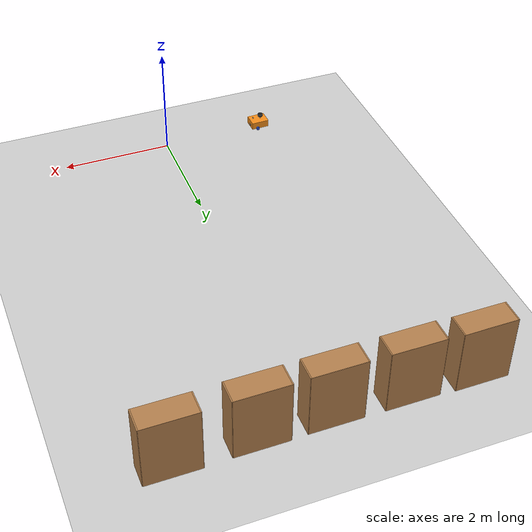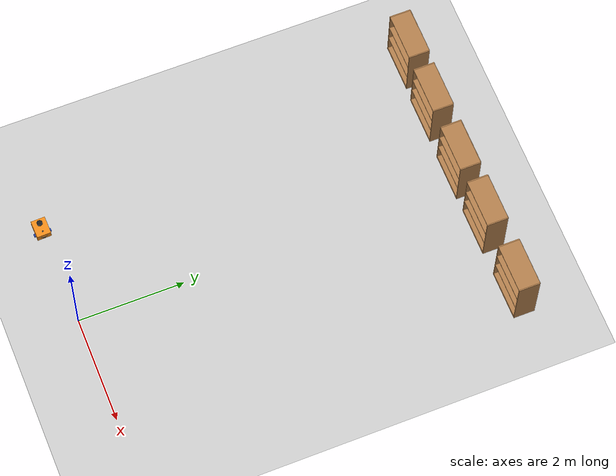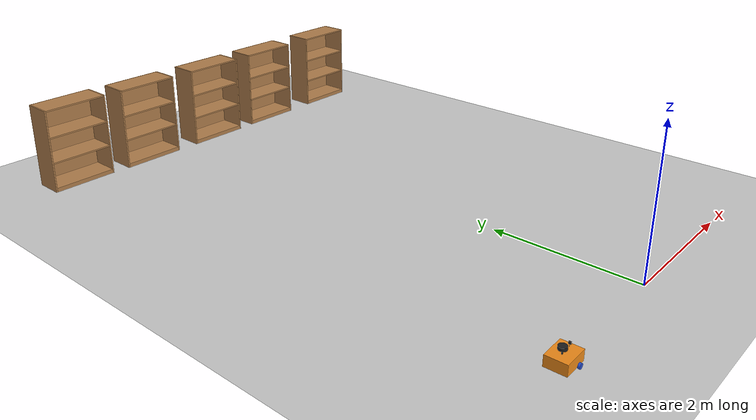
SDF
<sdf version="1.7">
 <world name="default">
  <light name="sun" type="directional">
   <pose>0 0 10 0 -0 0</pose>
   <diffuse>0.8 0.8 0.8 1</diffuse>
   <specular>0.2 0.2 0.2 1</specular>
   <attenuation>
    <range>1000</range>
    <constant>0.9</constant>
    <linear>0.01</linear>
    <quadratic>0.001</quadratic>
   </attenuation>
   <direction>-0.5 0.1 -0.9</direction>
   <spot><inner_angle>0</inner_angle><outer_angle>0</outer_angle><falloff>0</falloff></spot>
  </light>
  <model name="ground_plane">
   <static>1</static>
   <link name="link">
    <collision name="collision">
     <geometry><plane><normal>0 0 1</normal><size>100 100</size></plane></geometry>
     <surface>
      <contact><collide_bitmask>65535</collide_bitmask></contact>
      <friction><ode><mu>100</mu><mu2>50</mu2></ode></friction>
     </surface>
    </collision>
    <visual name="visual">
     <cast_shadows>0</cast_shadows>
     <geometry><plane><normal>0 0 1</normal><size>100 100</size></plane></geometry>
     <material>
      <script><uri>file://media/materials/scripts/gazebo.material</uri><name>Gazebo/Grey</name></script>
     </material>
    </visual>
   </link>
  </model>
  <gravity>0 0 -9.8</gravity>
  <magnetic_field>6e-06 2.3e-05 -4.2e-05</magnetic_field>
  <atmosphere type="adiabatic"/>
  <physics type="ode">
   <max_step_size>0.001</max_step_size>
   <real_time_factor>1</real_time_factor>
   <real_time_update_rate>1000</real_time_update_rate>
  </physics>
  <scene><ambient>0.4 0.4 0.4 1</ambient><background>0.7 0.7 0.7 1</background><shadows>1</shadows></scene>
  <audio><device>default</device></audio>
  <spherical_coordinates>
   <surface_model>EARTH_WGS84</surface_model>
   <latitude_deg>0</latitude_deg>
   <longitude_deg>0</longitude_deg>
   <elevation>0</elevation>
   <heading_deg>0</heading_deg>
  </spherical_coordinates>
  <model name="my_bot">
   <link name="base_link">
    <inertial>
     <pose>-0.067475 0 0.081098 0 -0 0</pose>
     <mass>0.61</mass>
     <inertia>
      <ixx>0.00561003</ixx>
      <ixy>0</ixy>
      <ixz>0.000453811</ixz>
      <iyy>0.00760348</iyy>
      <iyz>0</iyz>
      <izz>0.00797093</izz>
     </inertia>
    </inertial>
    <collision name="base_link_fixed_joint_lump__chassis_collision">
     <pose>-0.0585 0 0.059 0 -0 0</pose>
     <geometry><box><size>0.335 0.265 0.138</size></box></geometry>
    </collision>
    <collision name="base_link_fixed_joint_lump__caster_wheel_collision_1">
     <pose>-0.151 0 -0.023 0 -0 0</pose>
     <geometry><sphere><radius>0.01</radius></sphere></geometry>
     <surface><friction><ode><mu>0.001</mu><mu2>0.001</mu2></ode></friction></surface>
    </collision>
    <collision name="base_link_fixed_joint_lump__laser_frame_collision_2">
     <pose>-0.104 0 0.202 0 -0 0</pose>
     <geometry><cylinder><length>0.04</length><radius>0.05</radius></cylinder></geometry>
    </collision>
    <visual name="base_link_fixed_joint_lump__chassis_visual">
     <pose>-0.0585 0 0.059 0 -0 0</pose>
     <geometry><box><size>0.335 0.265 0.138</size></box></geometry>
     <material>
      <script><name>Gazebo/Orange</name><uri>file://media/materials/scripts/gazebo.material</uri></script>
     </material>
    </visual>
    <visual name="base_link_fixed_joint_lump__camera_link_visual_1">
     <pose>0.05 0 0.171 0 0.18 0</pose>
     <geometry><box><size>0.01 0.03 0.03</size></box></geometry>
     <material>
      <script><name>Gazebo/Black</name><uri>file://media/materials/scripts/gazebo.material</uri></script>
     </material>
    </visual>
    <visual name="base_link_fixed_joint_lump__camera_link_visual_2">
     <pose>0.041049 0 0.121808 0 0.18 0</pose>
     <geometry><cylinder><length>0.1</length><radius>0.002</radius></cylinder></geometry>
     <material>
      <script><name>Gazebo/Black</name><uri>file://media/materials/scripts/gazebo.material</uri></script>
     </material>
    </visual>
    <visual name="base_link_fixed_joint_lump__caster_wheel_visual_3">
     <pose>-0.151 0 -0.023 0 -0 0</pose>
     <geometry><sphere><radius>0.01</radius></sphere></geometry>
     <material>
      <script><name>Gazebo/White</name><uri>file://media/materials/scripts/gazebo.material</uri></script>
     </material>
    </visual>
    <visual name="base_link_fixed_joint_lump__face_link_visual_4">
     <pose>0.109 0.05 0.069 3.14159 1.57079 3.14159</pose>
     <geometry><cylinder><length>0.002</length><radius>0.01</radius></cylinder></geometry>
     <material>
      <script><name>Gazebo/Black</name><uri>file://media/materials/scripts/gazebo.material</uri></script>
     </material>
    </visual>
    <visual name="base_link_fixed_joint_lump__face_link_visual_5">
     <pose>0.109 -0.05 0.069 3.14159 1.57079 3.14159</pose>
     <geometry><cylinder><length>0.002</length><radius>0.01</radius></cylinder></geometry>
     <material>
      <script><name>Gazebo/Black</name><uri>file://media/materials/scripts/gazebo.material</uri></script>
     </material>
    </visual>
    <visual name="base_link_fixed_joint_lump__face_link_visual_6">
     <pose>0.098 0 0.059 0 1.5 0</pose>
     <geometry><cylinder><length>0.02</length><radius>0.05</radius></cylinder></geometry>
     <material>
      <script><name>Gazebo/Black</name><uri>file://media/materials/scripts/gazebo.material</uri></script>
     </material>
    </visual>
    <visual name="base_link_fixed_joint_lump__laser_frame_visual_7">
     <pose>-0.104 0 0.202 0 -0 0</pose>
     <geometry><cylinder><length>0.04</length><radius>0.05</radius></cylinder></geometry>
     <material>
      <script><name>Gazebo/Black</name><uri>file://media/materials/scripts/gazebo.material</uri></script>
     </material>
    </visual>
    <visual name="base_link_fixed_joint_lump__laser_frame_visual_8">
     <pose>-0.104 0 0.152 0 -0 0</pose>
     <geometry><cylinder><length>0.1</length><radius>0.01</radius></cylinder></geometry>
     <material>
      <script><name>Gazebo/Black</name><uri>file://media/materials/scripts/gazebo.material</uri></script>
     </material>
    </visual>
    <sensor name="camera" type="camera">
     <visualize>1</visualize>
     <update_rate>10</update_rate>
     <camera>
      <horizontal_fov>1.089</horizontal_fov>
      <image><format>R8G8B8</format><width>640</width><height>480</height></image>
      <clip><near>0.05</near><far>8</far></clip>
     </camera>
     <plugin name="camera_controller" filename="libgazebo_ros_camera.so">
      <frame_name>camera_link_optical</frame_name>
     </plugin>
     <pose>0.05 0 0.171 0 0.18 0</pose>
    </sensor>
    <sensor name="laser" type="ray">
     <visualize>0</visualize>
     <update_rate>10</update_rate>
     <ray>
      <scan>
       <horizontal>
        <samples>360</samples>
        <min_angle>-3.14</min_angle>
        <max_angle>3.14</max_angle>
        <resolution>1</resolution>
       </horizontal>
       <vertical><samples>1</samples><min_angle>0</min_angle><max_angle>0</max_angle></vertical>
      </scan>
      <range><min>0.3</min><max>12</max></range>
     </ray>
     <plugin name="laser_controller" filename="libgazebo_ros_ray_sensor.so">
      <ros><argument>~/out:=scan</argument></ros>
      <output_type>sensor_msgs/LaserScan</output_type>
      <frame_name>laser_frame</frame_name>
     </plugin>
     <pose>-0.104 0 0.202 0 -0 0</pose>
    </sensor>
   </link>
   <joint name="left_wheel_joint" type="revolute">
    <pose relative_to="base_link">0 0.1485 0 -1.5708 0 0</pose>
    <parent>base_link</parent>
    <child>left_wheel</child>
    <axis>
     <xyz>0 0 1</xyz>
     <limit><lower>-1e+16</lower><upper>1e+16</upper></limit>
     <dynamics><spring_reference>0</spring_reference><spring_stiffness>0</spring_stiffness></dynamics>
    </axis>
   </joint>
   <link name="left_wheel">
    <pose relative_to="left_wheel_joint">0 0 0 0 -0 0</pose>
    <inertial>
     <mass>0.05</mass>
     <inertia>
      <ixx>1.64292e-05</ixx>
      <ixy>0</ixy>
      <ixz>0</ixz>
      <iyy>1.64292e-05</iyy>
      <iyz>0</iyz>
      <izz>2.7225e-05</izz>
     </inertia>
    </inertial>
    <collision name="left_wheel_collision">
     <geometry><sphere><radius>0.033</radius></sphere></geometry>
    </collision>
    <visual name="left_wheel_visual">
     <geometry><cylinder><length>0.026</length><radius>0.033</radius></cylinder></geometry>
     <material>
      <script><name>Gazebo/Blue</name><uri>file://media/materials/scripts/gazebo.material</uri></script>
     </material>
    </visual>
   </link>
   <joint name="right_wheel_joint" type="revolute">
    <pose relative_to="base_link">0 -0.1485 0 1.5708 -0 0</pose>
    <parent>base_link</parent>
    <child>right_wheel</child>
    <axis>
     <xyz>0 0 -1</xyz>
     <limit><lower>-1e+16</lower><upper>1e+16</upper></limit>
     <dynamics><spring_reference>0</spring_reference><spring_stiffness>0</spring_stiffness></dynamics>
    </axis>
   </joint>
   <link name="right_wheel">
    <pose relative_to="right_wheel_joint">0 0 0 0 -0 0</pose>
    <inertial>
     <mass>0.05</mass>
     <inertia>
      <ixx>1.64292e-05</ixx>
      <ixy>0</ixy>
      <ixz>0</ixz>
      <iyy>1.64292e-05</iyy>
      <iyz>0</iyz>
      <izz>2.7225e-05</izz>
     </inertia>
    </inertial>
    <collision name="right_wheel_collision">
     <geometry><sphere><radius>0.033</radius></sphere></geometry>
    </collision>
    <visual name="right_wheel_visual">
     <geometry><cylinder><length>0.026</length><radius>0.033</radius></cylinder></geometry>
     <material>
      <script><name>Gazebo/Blue</name><uri>file://media/materials/scripts/gazebo.material</uri></script>
     </material>
    </visual>
   </link>
   <static>0</static>
   <plugin name="gazebo_ros2_control" filename="libgazebo_ros2_control.so">
    <parameters>/home/harishankar/rosBot/install/ros_bot/share/ros_bot/config/my_controllers.yaml</parameters>
    <parameters>/home/harishankar/rosBot/install/ros_bot/share/ros_bot/config/gaz_ros2_ctl_use_sim.yaml</parameters>
   </plugin>
   <pose>-1.84042 -0.023994 0.032997 1.6e-05 1.8e-05 0.022312</pose>
  </model>
  <model name="bookshelf">
   <static>1</static>
   <link name="link">
    <inertial><mass>1</mass></inertial>
    <collision name="back">
     <pose>0 0.005 0.6 0 -0 0</pose>
     <geometry><box><size>0.9 0.01 1.2</size></box></geometry>
    </collision>
    <visual name="visual1">
     <pose>0 0.005 0.6 0 -0 0</pose>
     <geometry><box><size>0.9 0.01 1.2</size></box></geometry>
     <material>
      <script><uri>file://media/materials/scripts/gazebo.material</uri><name>Gazebo/Wood</name></script>
     </material>
    </visual>
    <collision name="left_side">
     <pose>0.45 -0.195 0.6 0 -0 0</pose>
     <geometry><box><size>0.02 0.4 1.2</size></box></geometry>
    </collision>
    <visual name="visual2">
     <pose>0.45 -0.195 0.6 0 -0 0</pose>
     <geometry><box><size>0.02 0.4 1.2</size></box></geometry>
     <material>
      <script><uri>file://media/materials/scripts/gazebo.material</uri><name>Gazebo/Wood</name></script>
     </material>
    </visual>
    <collision name="right_side">
     <pose>-0.45 -0.195 0.6 0 -0 0</pose>
     <geometry><box><size>0.02 0.4 1.2</size></box></geometry>
    </collision>
    <visual name="visual3">
     <pose>-0.45 -0.195 0.6 0 -0 0</pose>
     <geometry><box><size>0.02 0.4 1.2</size></box></geometry>
     <material>
      <script><uri>file://media/materials/scripts/gazebo.material</uri><name>Gazebo/Wood</name></script>
     </material>
    </visual>
    <collision name="bottom">
     <pose>0 -0.195 0.03 0 -0 0</pose>
     <geometry><box><size>0.88 0.4 0.06</size></box></geometry>
    </collision>
    <visual name="visual4">
     <pose>0 -0.195 0.03 0 -0 0</pose>
     <geometry><box><size>0.88 0.4 0.06</size></box></geometry>
     <material>
      <script><uri>file://media/materials/scripts/gazebo.material</uri><name>Gazebo/Wood</name></script>
     </material>
    </visual>
    <collision name="top">
     <pose>0 -0.195 1.19 0 -0 0</pose>
     <geometry><box><size>0.88 0.4 0.02</size></box></geometry>
    </collision>
    <visual name="visual5">
     <pose>0 -0.195 1.19 0 -0 0</pose>
     <geometry><box><size>0.88 0.4 0.02</size></box></geometry>
     <material>
      <script><uri>file://media/materials/scripts/gazebo.material</uri><name>Gazebo/Wood</name></script>
     </material>
    </visual>
    <collision name="low_shelf">
     <pose>0 -0.195 0.43 0 -0 0</pose>
     <geometry><box><size>0.88 0.4 0.02</size></box></geometry>
    </collision>
    <visual name="visual6">
     <pose>0 -0.195 0.43 0 -0 0</pose>
     <geometry><box><size>0.88 0.4 0.02</size></box></geometry>
     <material>
      <script><uri>file://media/materials/scripts/gazebo.material</uri><name>Gazebo/Wood</name></script>
     </material>
    </visual>
    <collision name="high_shelf">
     <pose>0 -0.195 0.8 0 -0 0</pose>
     <geometry><box><size>0.88 0.4 0.02</size></box></geometry>
    </collision>
    <visual name="visual7">
     <pose>0 -0.195 0.8 0 -0 0</pose>
     <geometry><box><size>0.88 0.4 0.02</size></box></geometry>
     <material>
      <script><uri>file://media/materials/scripts/gazebo.material</uri><name>Gazebo/Wood</name></script>
     </material>
    </visual>
   </link>
   <pose>-2.61363 7.59403 0 0 -0 0</pose>
  </model>
  <model name="bookshelf_clone">
   <static>1</static>
   <link name="link">
    <inertial><mass>1</mass></inertial>
    <collision name="back">
     <pose>0 0.005 0.6 0 -0 0</pose>
     <geometry><box><size>0.9 0.01 1.2</size></box></geometry>
    </collision>
    <visual name="visual1">
     <pose>0 0.005 0.6 0 -0 0</pose>
     <geometry><box><size>0.9 0.01 1.2</size></box></geometry>
     <material>
      <script><uri>file://media/materials/scripts/gazebo.material</uri><name>Gazebo/Wood</name></script>
     </material>
    </visual>
    <collision name="left_side">
     <pose>0.45 -0.195 0.6 0 -0 0</pose>
     <geometry><box><size>0.02 0.4 1.2</size></box></geometry>
    </collision>
    <visual name="visual2">
     <pose>0.45 -0.195 0.6 0 -0 0</pose>
     <geometry><box><size>0.02 0.4 1.2</size></box></geometry>
     <material>
      <script><uri>file://media/materials/scripts/gazebo.material</uri><name>Gazebo/Wood</name></script>
     </material>
    </visual>
    <collision name="right_side">
     <pose>-0.45 -0.195 0.6 0 -0 0</pose>
     <geometry><box><size>0.02 0.4 1.2</size></box></geometry>
    </collision>
    <visual name="visual3">
     <pose>-0.45 -0.195 0.6 0 -0 0</pose>
     <geometry><box><size>0.02 0.4 1.2</size></box></geometry>
     <material>
      <script><uri>file://media/materials/scripts/gazebo.material</uri><name>Gazebo/Wood</name></script>
     </material>
    </visual>
    <collision name="bottom">
     <pose>0 -0.195 0.03 0 -0 0</pose>
     <geometry><box><size>0.88 0.4 0.06</size></box></geometry>
    </collision>
    <visual name="visual4">
     <pose>0 -0.195 0.03 0 -0 0</pose>
     <geometry><box><size>0.88 0.4 0.06</size></box></geometry>
     <material>
      <script><uri>file://media/materials/scripts/gazebo.material</uri><name>Gazebo/Wood</name></script>
     </material>
    </visual>
    <collision name="top">
     <pose>0 -0.195 1.19 0 -0 0</pose>
     <geometry><box><size>0.88 0.4 0.02</size></box></geometry>
    </collision>
    <visual name="visual5">
     <pose>0 -0.195 1.19 0 -0 0</pose>
     <geometry><box><size>0.88 0.4 0.02</size></box></geometry>
     <material>
      <script><uri>file://media/materials/scripts/gazebo.material</uri><name>Gazebo/Wood</name></script>
     </material>
    </visual>
    <collision name="low_shelf">
     <pose>0 -0.195 0.43 0 -0 0</pose>
     <geometry><box><size>0.88 0.4 0.02</size></box></geometry>
    </collision>
    <visual name="visual6">
     <pose>0 -0.195 0.43 0 -0 0</pose>
     <geometry><box><size>0.88 0.4 0.02</size></box></geometry>
     <material>
      <script><uri>file://media/materials/scripts/gazebo.material</uri><name>Gazebo/Wood</name></script>
     </material>
    </visual>
    <collision name="high_shelf">
     <pose>0 -0.195 0.8 0 -0 0</pose>
     <geometry><box><size>0.88 0.4 0.02</size></box></geometry>
    </collision>
    <visual name="visual7">
     <pose>0 -0.195 0.8 0 -0 0</pose>
     <geometry><box><size>0.88 0.4 0.02</size></box></geometry>
     <material>
      <script><uri>file://media/materials/scripts/gazebo.material</uri><name>Gazebo/Wood</name></script>
     </material>
    </visual>
   </link>
   <pose>-1.45304 7.57282 0 0 -0 0</pose>
  </model>
  <model name="bookshelf_clone_0">
   <static>1</static>
   <link name="link">
    <inertial><mass>1</mass></inertial>
    <collision name="back">
     <pose>0 0.005 0.6 0 -0 0</pose>
     <geometry><box><size>0.9 0.01 1.2</size></box></geometry>
    </collision>
    <visual name="visual1">
     <pose>0 0.005 0.6 0 -0 0</pose>
     <geometry><box><size>0.9 0.01 1.2</size></box></geometry>
     <material>
      <script><uri>file://media/materials/scripts/gazebo.material</uri><name>Gazebo/Wood</name></script>
     </material>
    </visual>
    <collision name="left_side">
     <pose>0.45 -0.195 0.6 0 -0 0</pose>
     <geometry><box><size>0.02 0.4 1.2</size></box></geometry>
    </collision>
    <visual name="visual2">
     <pose>0.45 -0.195 0.6 0 -0 0</pose>
     <geometry><box><size>0.02 0.4 1.2</size></box></geometry>
     <material>
      <script><uri>file://media/materials/scripts/gazebo.material</uri><name>Gazebo/Wood</name></script>
     </material>
    </visual>
    <collision name="right_side">
     <pose>-0.45 -0.195 0.6 0 -0 0</pose>
     <geometry><box><size>0.02 0.4 1.2</size></box></geometry>
    </collision>
    <visual name="visual3">
     <pose>-0.45 -0.195 0.6 0 -0 0</pose>
     <geometry><box><size>0.02 0.4 1.2</size></box></geometry>
     <material>
      <script><uri>file://media/materials/scripts/gazebo.material</uri><name>Gazebo/Wood</name></script>
     </material>
    </visual>
    <collision name="bottom">
     <pose>0 -0.195 0.03 0 -0 0</pose>
     <geometry><box><size>0.88 0.4 0.06</size></box></geometry>
    </collision>
    <visual name="visual4">
     <pose>0 -0.195 0.03 0 -0 0</pose>
     <geometry><box><size>0.88 0.4 0.06</size></box></geometry>
     <material>
      <script><uri>file://media/materials/scripts/gazebo.material</uri><name>Gazebo/Wood</name></script>
     </material>
    </visual>
    <collision name="top">
     <pose>0 -0.195 1.19 0 -0 0</pose>
     <geometry><box><size>0.88 0.4 0.02</size></box></geometry>
    </collision>
    <visual name="visual5">
     <pose>0 -0.195 1.19 0 -0 0</pose>
     <geometry><box><size>0.88 0.4 0.02</size></box></geometry>
     <material>
      <script><uri>file://media/materials/scripts/gazebo.material</uri><name>Gazebo/Wood</name></script>
     </material>
    </visual>
    <collision name="low_shelf">
     <pose>0 -0.195 0.43 0 -0 0</pose>
     <geometry><box><size>0.88 0.4 0.02</size></box></geometry>
    </collision>
    <visual name="visual6">
     <pose>0 -0.195 0.43 0 -0 0</pose>
     <geometry><box><size>0.88 0.4 0.02</size></box></geometry>
     <material>
      <script><uri>file://media/materials/scripts/gazebo.material</uri><name>Gazebo/Wood</name></script>
     </material>
    </visual>
    <collision name="high_shelf">
     <pose>0 -0.195 0.8 0 -0 0</pose>
     <geometry><box><size>0.88 0.4 0.02</size></box></geometry>
    </collision>
    <visual name="visual7">
     <pose>0 -0.195 0.8 0 -0 0</pose>
     <geometry><box><size>0.88 0.4 0.02</size></box></geometry>
     <material>
      <script><uri>file://media/materials/scripts/gazebo.material</uri><name>Gazebo/Wood</name></script>
     </material>
    </visual>
   </link>
   <pose>-0.20374 7.56938 0 0 -0 0</pose>
  </model>
  <model name="bookshelf_clone_1">
   <static>1</static>
   <link name="link">
    <inertial><mass>1</mass></inertial>
    <collision name="back">
     <pose>0 0.005 0.6 0 -0 0</pose>
     <geometry><box><size>0.9 0.01 1.2</size></box></geometry>
    </collision>
    <visual name="visual1">
     <pose>0 0.005 0.6 0 -0 0</pose>
     <geometry><box><size>0.9 0.01 1.2</size></box></geometry>
     <material>
      <script><uri>file://media/materials/scripts/gazebo.material</uri><name>Gazebo/Wood</name></script>
     </material>
    </visual>
    <collision name="left_side">
     <pose>0.45 -0.195 0.6 0 -0 0</pose>
     <geometry><box><size>0.02 0.4 1.2</size></box></geometry>
    </collision>
    <visual name="visual2">
     <pose>0.45 -0.195 0.6 0 -0 0</pose>
     <geometry><box><size>0.02 0.4 1.2</size></box></geometry>
     <material>
      <script><uri>file://media/materials/scripts/gazebo.material</uri><name>Gazebo/Wood</name></script>
     </material>
    </visual>
    <collision name="right_side">
     <pose>-0.45 -0.195 0.6 0 -0 0</pose>
     <geometry><box><size>0.02 0.4 1.2</size></box></geometry>
    </collision>
    <visual name="visual3">
     <pose>-0.45 -0.195 0.6 0 -0 0</pose>
     <geometry><box><size>0.02 0.4 1.2</size></box></geometry>
     <material>
      <script><uri>file://media/materials/scripts/gazebo.material</uri><name>Gazebo/Wood</name></script>
     </material>
    </visual>
    <collision name="bottom">
     <pose>0 -0.195 0.03 0 -0 0</pose>
     <geometry><box><size>0.88 0.4 0.06</size></box></geometry>
    </collision>
    <visual name="visual4">
     <pose>0 -0.195 0.03 0 -0 0</pose>
     <geometry><box><size>0.88 0.4 0.06</size></box></geometry>
     <material>
      <script><uri>file://media/materials/scripts/gazebo.material</uri><name>Gazebo/Wood</name></script>
     </material>
    </visual>
    <collision name="top">
     <pose>0 -0.195 1.19 0 -0 0</pose>
     <geometry><box><size>0.88 0.4 0.02</size></box></geometry>
    </collision>
    <visual name="visual5">
     <pose>0 -0.195 1.19 0 -0 0</pose>
     <geometry><box><size>0.88 0.4 0.02</size></box></geometry>
     <material>
      <script><uri>file://media/materials/scripts/gazebo.material</uri><name>Gazebo/Wood</name></script>
     </material>
    </visual>
    <collision name="low_shelf">
     <pose>0 -0.195 0.43 0 -0 0</pose>
     <geometry><box><size>0.88 0.4 0.02</size></box></geometry>
    </collision>
    <visual name="visual6">
     <pose>0 -0.195 0.43 0 -0 0</pose>
     <geometry><box><size>0.88 0.4 0.02</size></box></geometry>
     <material>
      <script><uri>file://media/materials/scripts/gazebo.material</uri><name>Gazebo/Wood</name></script>
     </material>
    </visual>
    <collision name="high_shelf">
     <pose>0 -0.195 0.8 0 -0 0</pose>
     <geometry><box><size>0.88 0.4 0.02</size></box></geometry>
    </collision>
    <visual name="visual7">
     <pose>0 -0.195 0.8 0 -0 0</pose>
     <geometry><box><size>0.88 0.4 0.02</size></box></geometry>
     <material>
      <script><uri>file://media/materials/scripts/gazebo.material</uri><name>Gazebo/Wood</name></script>
     </material>
    </visual>
   </link>
   <pose>0.968524 7.58286 0 0 -0 0</pose>
  </model>
  <model name="bookshelf_clone_2">
   <static>1</static>
   <link name="link">
    <inertial><mass>1</mass></inertial>
    <collision name="back">
     <pose>0 0.005 0.6 0 -0 0</pose>
     <geometry><box><size>0.9 0.01 1.2</size></box></geometry>
    </collision>
    <visual name="visual1">
     <pose>0 0.005 0.6 0 -0 0</pose>
     <geometry><box><size>0.9 0.01 1.2</size></box></geometry>
     <material>
      <script><uri>file://media/materials/scripts/gazebo.material</uri><name>Gazebo/Wood</name></script>
     </material>
    </visual>
    <collision name="left_side">
     <pose>0.45 -0.195 0.6 0 -0 0</pose>
     <geometry><box><size>0.02 0.4 1.2</size></box></geometry>
    </collision>
    <visual name="visual2">
     <pose>0.45 -0.195 0.6 0 -0 0</pose>
     <geometry><box><size>0.02 0.4 1.2</size></box></geometry>
     <material>
      <script><uri>file://media/materials/scripts/gazebo.material</uri><name>Gazebo/Wood</name></script>
     </material>
    </visual>
    <collision name="right_side">
     <pose>-0.45 -0.195 0.6 0 -0 0</pose>
     <geometry><box><size>0.02 0.4 1.2</size></box></geometry>
    </collision>
    <visual name="visual3">
     <pose>-0.45 -0.195 0.6 0 -0 0</pose>
     <geometry><box><size>0.02 0.4 1.2</size></box></geometry>
     <material>
      <script><uri>file://media/materials/scripts/gazebo.material</uri><name>Gazebo/Wood</name></script>
     </material>
    </visual>
    <collision name="bottom">
     <pose>0 -0.195 0.03 0 -0 0</pose>
     <geometry><box><size>0.88 0.4 0.06</size></box></geometry>
    </collision>
    <visual name="visual4">
     <pose>0 -0.195 0.03 0 -0 0</pose>
     <geometry><box><size>0.88 0.4 0.06</size></box></geometry>
     <material>
      <script><uri>file://media/materials/scripts/gazebo.material</uri><name>Gazebo/Wood</name></script>
     </material>
    </visual>
    <collision name="top">
     <pose>0 -0.195 1.19 0 -0 0</pose>
     <geometry><box><size>0.88 0.4 0.02</size></box></geometry>
    </collision>
    <visual name="visual5">
     <pose>0 -0.195 1.19 0 -0 0</pose>
     <geometry><box><size>0.88 0.4 0.02</size></box></geometry>
     <material>
      <script><uri>file://media/materials/scripts/gazebo.material</uri><name>Gazebo/Wood</name></script>
     </material>
    </visual>
    <collision name="low_shelf">
     <pose>0 -0.195 0.43 0 -0 0</pose>
     <geometry><box><size>0.88 0.4 0.02</size></box></geometry>
    </collision>
    <visual name="visual6">
     <pose>0 -0.195 0.43 0 -0 0</pose>
     <geometry><box><size>0.88 0.4 0.02</size></box></geometry>
     <material>
      <script><uri>file://media/materials/scripts/gazebo.material</uri><name>Gazebo/Wood</name></script>
     </material>
    </visual>
    <collision name="high_shelf">
     <pose>0 -0.195 0.8 0 -0 0</pose>
     <geometry><box><size>0.88 0.4 0.02</size></box></geometry>
    </collision>
    <visual name="visual7">
     <pose>0 -0.195 0.8 0 -0 0</pose>
     <geometry><box><size>0.88 0.4 0.02</size></box></geometry>
     <material>
      <script><uri>file://media/materials/scripts/gazebo.material</uri><name>Gazebo/Wood</name></script>
     </material>
    </visual>
   </link>
   <pose>2.31709 7.59905 0 0 -0 0</pose>
  </model>
 </world>
</sdf>
